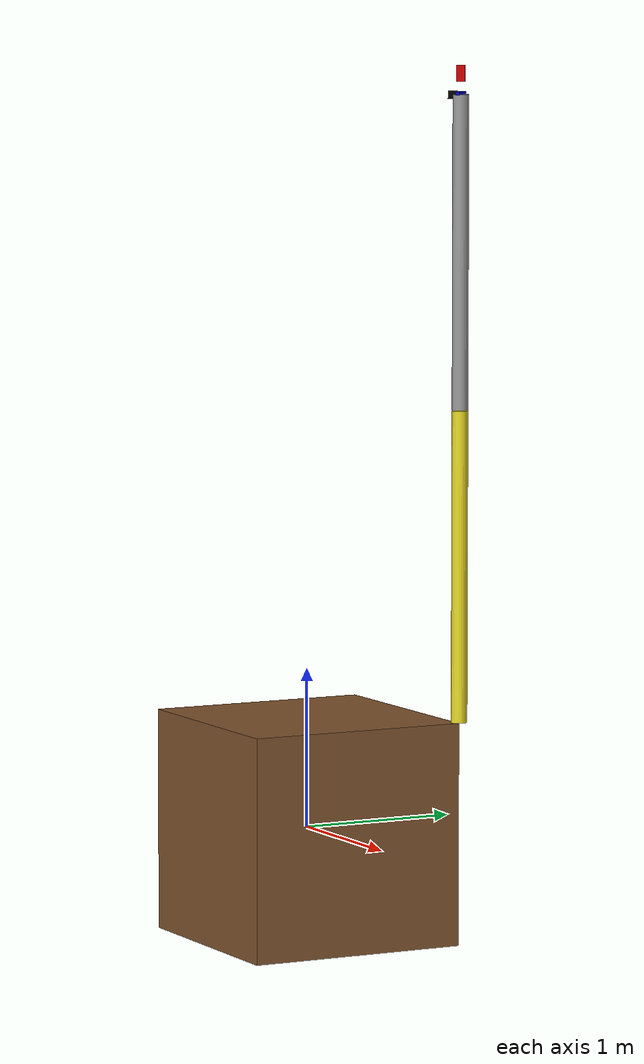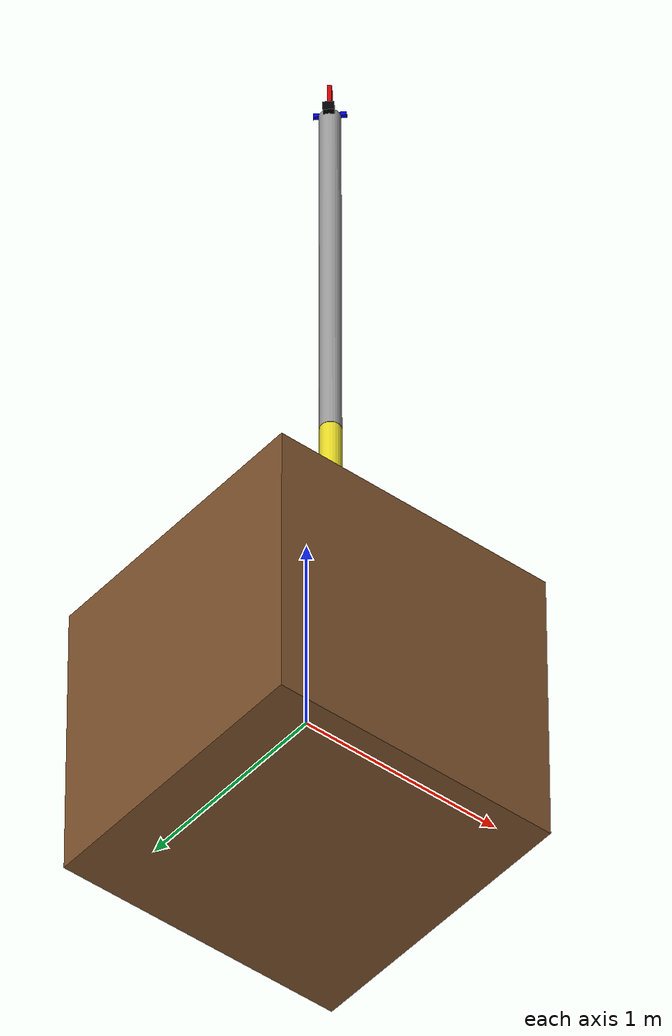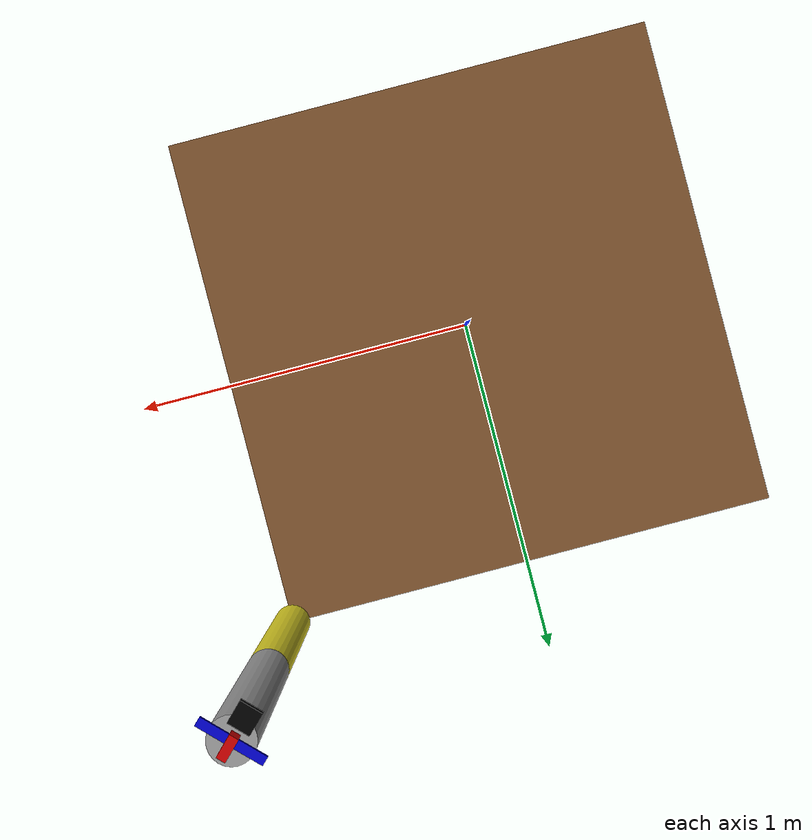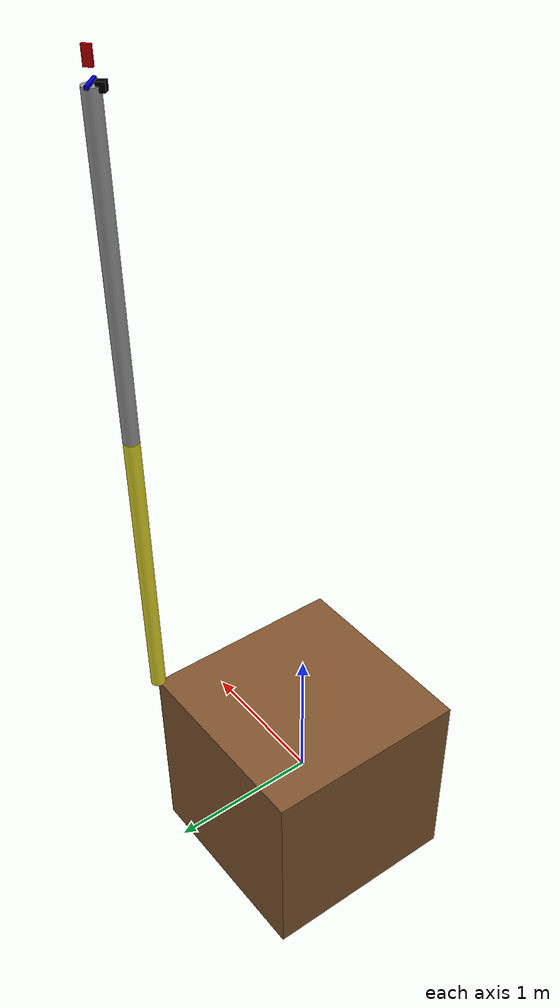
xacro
<?xml version="1.0"?>
<robot xmlns:xacro="http://www.ros.org/wiki/xacro" name="space_robot">
    <xacro:arg name="initial_positions_file" default="initial_positions.yaml" />

    <!-- Import space_robot urdf file -->
    <xacro:include filename="$(find space_robot_config)/config/space_robot.urdf.xacro" />

    <!-- Import control_xacro -->
    <xacro:include filename="space_robot.ros2_control.xacro" />

    <xacro:space_robot_ros2_control name="FakeSystem" initial_positions_file="$(arg initial_positions_file)"/>

</robot>

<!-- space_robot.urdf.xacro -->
<robot xmlns:xacro="http://www.ros.org/wiki/xacro" name="space_robot">
    <xacro:arg name="initial_positions_file" default="initial_positions.yaml" />
    <xacro:arg name="use_gazebo" default="false" />

    <!-- Import space_robot urdf file -->

    <xacro:include filename="$(find space_robot_config)/description/urdf/robot_description.urdf.xacro"/>
    <xacro:srobot parent="world" use_gazebo="$(arg use_gazebo)">
        <origin xyz="0 0 0" rpy="0 0 0"/>
    </xacro:srobot>

    <xacro:include filename="$(find space_robot_config)/description/urdf/robot_model/robot.materials.xacro"/>

    <!-- Import control_xacro -->
    <xacro:include filename="$(find space_robot_config)/description/ros2_control/space_robot.ros2_control.xacro" />
    <xacro:space_robot_ros2_control name="FakeSystem" initial_positions_file="$(arg initial_positions_file)"
        use_gazebo="$(arg use_gazebo)"/>

    <!-- Gazebo -->
    <xacro:if value="$(arg use_gazebo)">
        <xacro:include filename="$(find space_robot_config)/description/gazebo/depth_camera.gazebo.xacro"/>
        <xacro:depth_camera_gazebo camera_name="front_depth_cam"/>

        <xacro:include filename="$(find space_robot_config)/description/gazebo/robot.gazebo.xacro" />
        <xacro:srobot_gazebo name="srobot_gazebo"/>
    </xacro:if>

</robot>

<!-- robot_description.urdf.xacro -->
<robot xmlns:xacro="http://www.ros.org/wiki/xacro">

    <xacro:macro name="srobot" params="parent use_gazebo *origin">

        <xacro:property name="axel_offset" value="0.005"/>

        <xacro:unless value="${use_gazebo}">
            <link name="${parent}"/>
            <joint name="base_joint" type="floating">
                <origin xyz="0 0 0" rpy="0 0 0"/>
                <parent link="${parent}" />
                <child link="base_link" />
            </joint>
        </xacro:unless>

        <!-- robot base -->
        <xacro:property name="base_size" value="1.4" />  <!-- Unit: m -->
        <xacro:property name="base_mass" value="300" />   <!-- Unit: kg -->
        <xacro:property name="base_inertia" value="50" />    <!-- Unit: kg*m^2 -->
        <xacro:property name="base_material" value="brown"/>
        <xacro:include filename="$(find space_robot_config)/description/urdf/robot_model/robot_base.urdf.xacro"/>
        <xacro:base
            name="base"
            cubic_size="${base_size}"
            base_mass="${base_mass}"
            base_inertia="${base_inertia}"
            material="${base_material}"
            parent_link="${parent}"
        >
            <xacro:insert_block name="origin"/>
        </xacro:base>

        <!-- robot link 1 -->
        <xacro:property name="link_1_length" value="1.94"/>
        <xacro:property name="link_1_radius" value="0.05"/>
        <xacro:property name="link_1_mass" value="25"/>
        <xacro:property name="link_1_inertia" value="7.8408"/>
        <xacro:property name="link_1_material" value="yellow"/>
        <xacro:include filename="$(find space_robot_config)/description/urdf/robot_model/robot_link.urdf.xacro"/>
        <xacro:link
            name="link_1"
            length="${link_1_length}"
            radius="${link_1_radius}"
            axel_offset="${axel_offset}"
            mass="${link_1_mass}"
            inertia="${link_1_inertia}"
            material="${link_1_material}"
            parent_link="base_link"
        >
            <origin xyz="${0.5 * base_size} ${0.5 * base_size} ${0.5 * (base_size + axel_offset)}"
                rpy="0 ${-0.5 * pi} ${0.75 * pi}"/>
        </xacro:link>

        <!-- robot link 2 -->
        <xacro:property name="link_2_length" value="1.94"/>
        <xacro:property name="link_2_radius" value="0.05"/>
        <xacro:property name="link_2_mass" value="25"/>
        <xacro:property name="link_2_inertia" value="7.8408"/>
        <xacro:property name="link_2_material" value="grey"/>
        <xacro:include filename="$(find space_robot_config)/description/urdf/robot_model/robot_link.urdf.xacro"/>
        <xacro:link
            name="link_2"
            length="${link_2_length}"
            radius="${link_2_radius}"
            axel_offset="${axel_offset}"
            mass="${link_2_mass}"
            inertia="${link_2_inertia}"
            material="${link_2_material}"
            parent_link="link_1"
        >
            <origin xyz="${0.5 * axel_offset + link_1_length} 0 0" rpy="0 0 0"/>
        </xacro:link>

        <!-- gripper -->
        <xacro:include filename="$(find space_robot_config)/description/urdf/robot_model/gripper.urdf.xacro" />
        <xacro:gripper_base parent="link_2">
            <origin xyz="${link_2_length + 0.01} 0 0" rpy="${0.5 * pi} 0 0" />
        </xacro:gripper_base>
        <xacro:finger prefix="left" reflect="-" />
        <xacro:finger prefix="right" reflect="" />

        <xacro:include filename="$(find space_robot_config)/description/urdf/depth_camera.urdf.xacro"/>
        <xacro:depth_camera parent_link="link_2" camera_name="front_depth_cam">
            <origin xyz="${link_2_length} ${link_2_radius + 0.001} 0" rpy="0 0 0"/>
        </xacro:depth_camera>

    </xacro:macro>

</robot>

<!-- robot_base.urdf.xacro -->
<robot xmlns:xacro="http://www.ros.org/wiki/xacro" name="robot_base">

    <xacro:macro name="base" params="name cubic_size base_mass base_inertia material parent_link *origin">

        <link name="${name}_link">
            <visual>
                <geometry>
                    <box size="${cubic_size} ${cubic_size} ${cubic_size}"/>
                </geometry>
                <material name="${material}"/>
                <origin xyz="0 0 0" rpy="0 0 0"/>
            </visual>
            <collision>
                <geometry>
                    <box size="${cubic_size + 0.001} ${cubic_size + 0.001} ${cubic_size + 0.001}"/>
                </geometry>
                <origin xyz="0 0 0" rpy="0 0 0"/>
            </collision>
            <inertial>
                <mass value="${base_mass}" />
                <origin xyz="0 0 0" rpy="0 0 0" />
                <inertia
                    ixx="${base_inertia}" ixy="0" ixz="0"
                    iyy="${base_inertia}" iyz="0"
                    izz="${base_inertia}"
                />
            </inertial>
        </link>

    </xacro:macro>

</robot>

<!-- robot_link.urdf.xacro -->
<robot xmlns:xacro="http://www.ros.org/wiki/xacro" name="robot_link">

    <xacro:macro name="link" params="name length radius axel_offset mass inertia material parent_link *origin">

        <joint name="${name}_joint" type="revolute">
            <parent link="${parent_link}"/>
            <child link="${name}"/>
            <xacro:insert_block name="origin"/>
            <axis xyz="0 0 1"/>
            <limit
                lower="-3.14"
                upper="3.14"
                velocity="1.0"
                effort="1000.0"
            />
        </joint>

        <link name="${name}">
            <visual>
                <geometry>
                    <cylinder length="${length}" radius="${radius}"/>
                </geometry>
                <material name="${material}"/>
                <origin xyz="${0.5 * (length + axel_offset)} 0 0" rpy="0 ${0.5 * pi} 0"/>
            </visual>
            <collision>
                <geometry>
                    <cylinder length="${length}" radius="${radius + 0.001}"/>
                </geometry>
                <origin xyz="${0.5 * (length + axel_offset)} 0 0" rpy="0 ${0.5 * pi} 0"/>
            </collision>
            <inertial>
                <mass value="${mass}" />
                <origin xyz="${0.5 * (length + axel_offset)} 0 0" rpy="0 ${0.5 * pi} 0"/>
                <inertia
                    ixx="${inertia}" ixy="0" ixz="0"
                    iyy="${inertia}" iyz="0"
                    izz="${inertia}"
                />
            </inertial>
        </link>

    </xacro:macro>

</robot>

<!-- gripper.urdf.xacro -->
<robot xmlns:xacro="http://www.ros.org/wiki/xacro" name="simple_gripper">

<xacro:property name="gripper_base_width" value="0.02" />
<xacro:property name="gripper_base_length" value="0.15" />
<xacro:property name="gripper_base_height" value="0.02" />
<xacro:property name="gripper_base_mass" value="0.1" />
<xacro:property name="gripper_base_inertia" value="0.001" />

<xacro:property name="finger_width" value="0.05" />
<xacro:property name="finger_thickness" value="0.02" />
<xacro:property name="finger_length" value="0.1" />
<xacro:property name="finger_mass" value="0.05" />
<xacro:property name="finger_inertia" value="0.001" />

<xacro:property name="finger_joint_limit" value="0.025" />
<xacro:property name="finger_joint_effort" value="10" />
<xacro:property name="finger_joint_velocity" value="0.1" />

<xacro:property name="gripper_color" value="0 0 0.8 1" />
<xacro:property name="finger_color" value="0.8 0 0 1" />

<xacro:macro name="gripper_base" params="parent *origin">
    <joint name="gripper_attach" type="fixed">
        <parent link="${parent}" />
        <child link="finger_base" />
        <xacro:insert_block name="origin" />
    </joint>

    <link name="finger_base">
        <visual>
            <geometry>
                <box size="${gripper_base_width} ${gripper_base_length} ${gripper_base_height}" />
            </geometry>
            <material name="blue">
                <color rgba="${gripper_color}" />
            </material>
        </visual>
        <collision>
            <geometry>
                <box size="${gripper_base_width} ${gripper_base_length} ${gripper_base_height}" />
            </geometry>
        </collision>
        <inertial>
            <mass value="${gripper_base_mass}" />
            <inertia ixx="${gripper_base_inertia}" ixy="0" ixz="0"
                    iyy="${gripper_base_inertia}" iyz="0"
                    izz="${gripper_base_inertia}" />
        </inertial>
    </link>
</xacro:macro>

<xacro:macro name="finger" params="prefix reflect">
    <joint name="${prefix}_finger_joint" type="prismatic">
        <parent link="finger_base" />
        <child link="${prefix}_finger" />
        <limit effort="${finger_joint_effort}"
               velocity="${finger_joint_velocity}"
               lower="-${finger_joint_limit}"
               upper="${finger_joint_limit}"/>
        <axis xyz="${reflect}1 0 0" />
        <origin xyz="${finger_length + gripper_base_height} 0 0" rpy="0 ${0.5 * pi} 0" />
    </joint>
    <link name="${prefix}_finger">
        <visual>
            <geometry>
                <box size="${finger_width} ${finger_thickness} ${finger_length}" />
            </geometry>
            <material name="red">
                <color rgba="${finger_color}" />
            </material>
        </visual>
        <collision>
            <geometry>
                <box size="${finger_width} ${finger_thickness} ${finger_length}" />
            </geometry>
        </collision>
        <inertial>
            <mass value="${finger_mass}" />
            <inertia ixx="${finger_inertia}" ixy="0" ixz="0"
                     iyy="${finger_inertia}" iyz="0"
                     izz="${finger_inertia}" />
        </inertial>
    </link>
</xacro:macro>

</robot>

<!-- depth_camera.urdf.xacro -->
<robot xmlns:xacro="http://www.ros.org/wiki/xacro">

    <xacro:macro name="depth_camera" params="parent_link camera_name *origin">

        <joint name="${camera_name}_joint" type="fixed">
            <parent link="${parent_link}"/>
            <child link="${camera_name}_link"/>
            <xacro:insert_block name="origin"/>
        </joint>

        <link name="${camera_name}_link">
            <visual>
                <geometry>
                    <box size="0.05 0.05 0.05"/>
                </geometry>
                <material name="black">
                    <color rgba="0.0 0.0 0.0 1.0"/>
                </material>
            </visual>
            <collision>
                <geometry>
                    <box size="0.05 0.05 0.05"/>
                </geometry>
            </collision>
            <inertial>
                <mass value="0.01" />
                <inertia ixx="0.001" ixy="0.0" ixz="0.0" iyy="0.001" iyz="0.0" izz="0.001" />
            </inertial>
        </link>

        <link name="${camera_name}_optical_frame"/>

        <joint name="${camera_name}_optical_joint" type="fixed">
            <parent link="${camera_name}_link"/>
            <child link="${camera_name}_optical_frame"/>
            <origin xyz="0 0 0" rpy="${0.5 * pi} 0 ${0.5 * pi}"/>
        </joint>

    </xacro:macro>

</robot>
